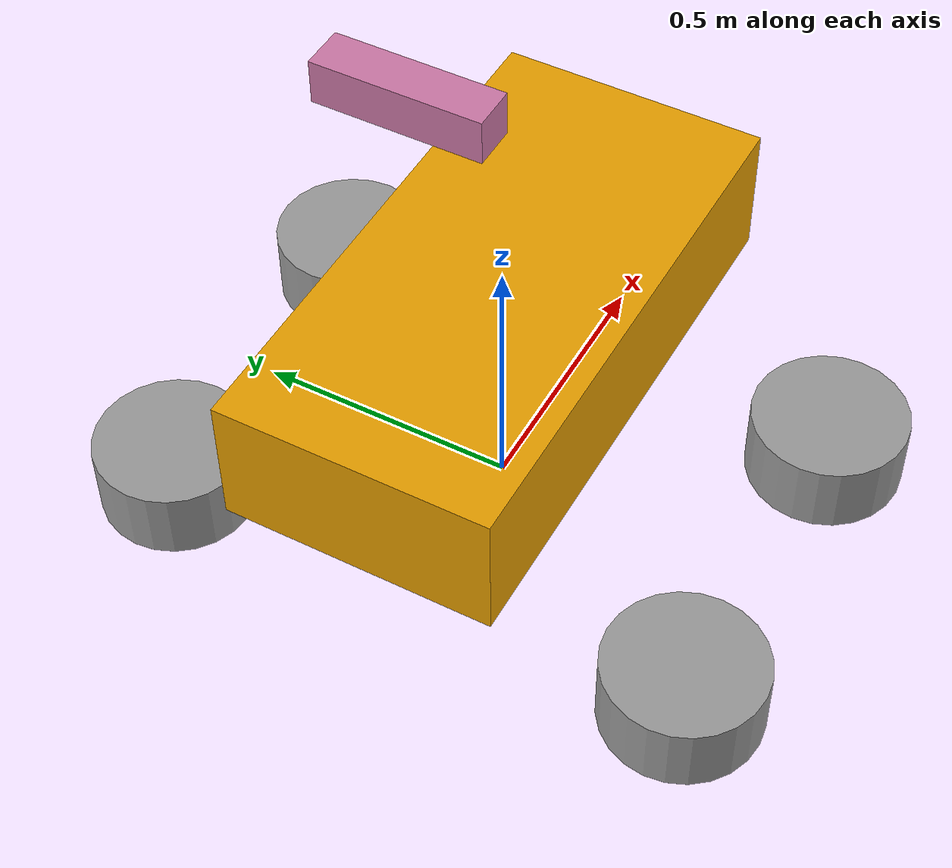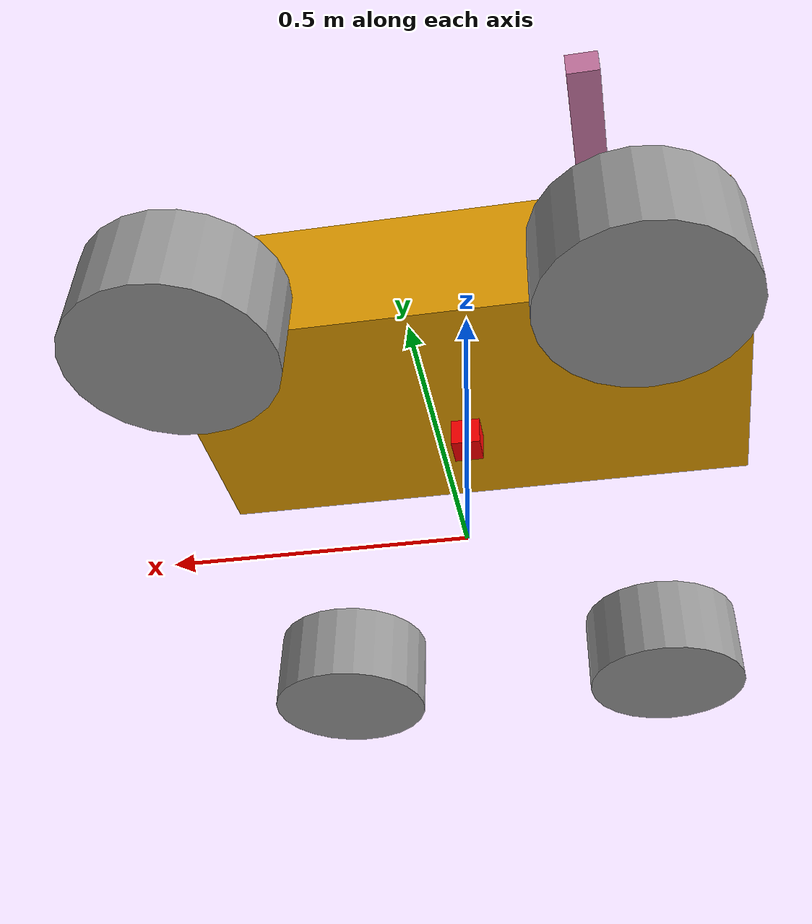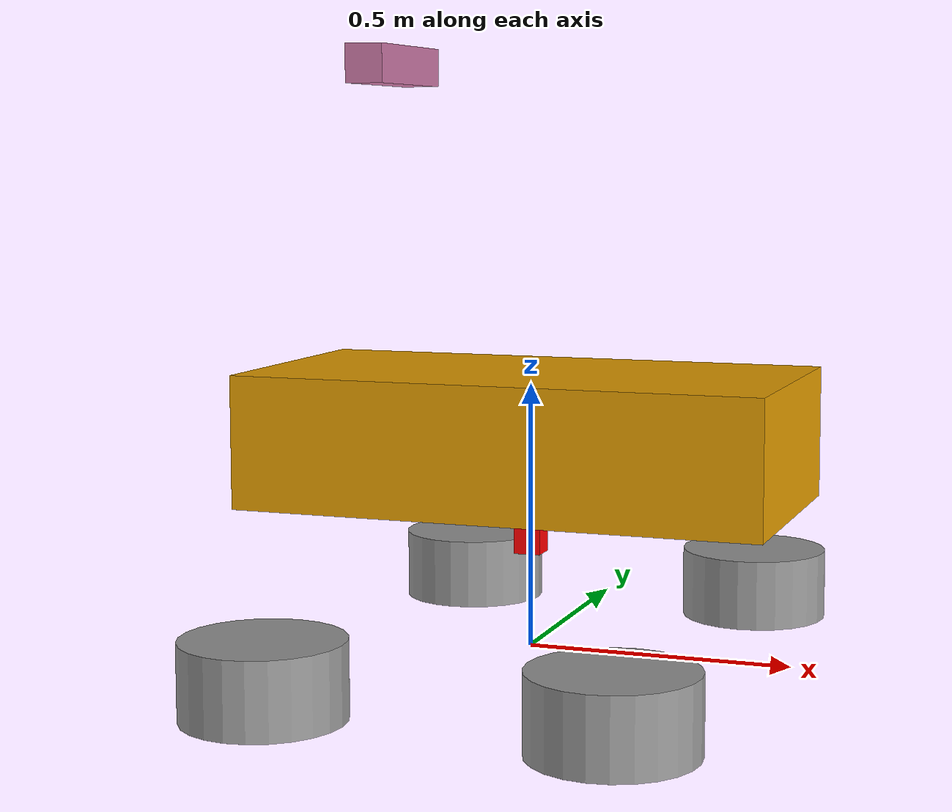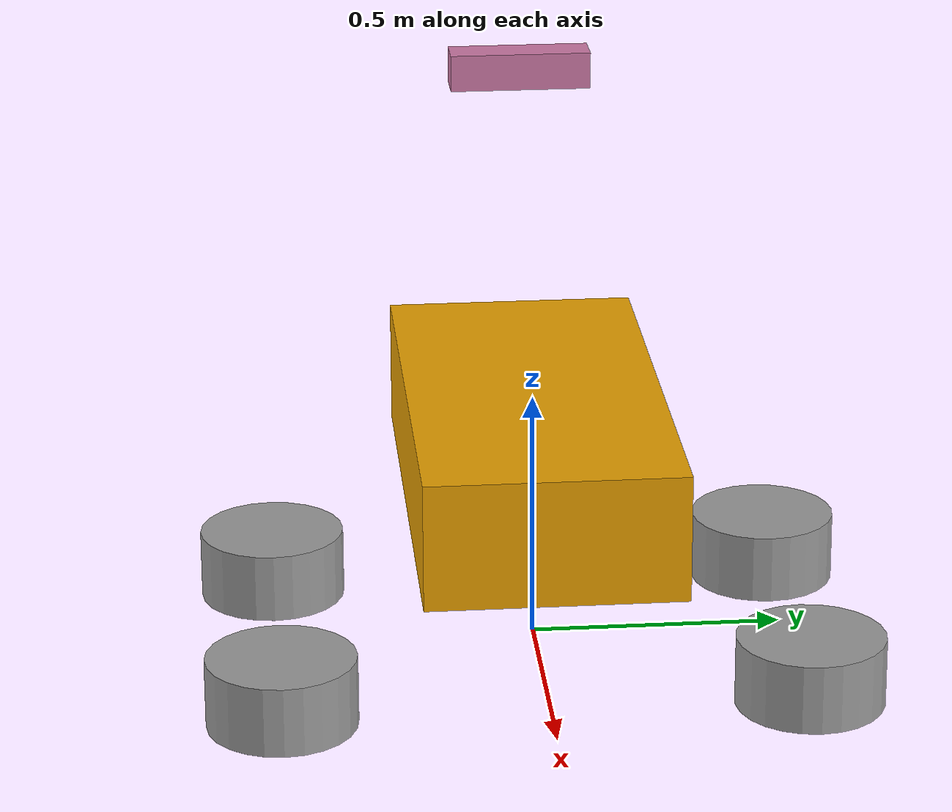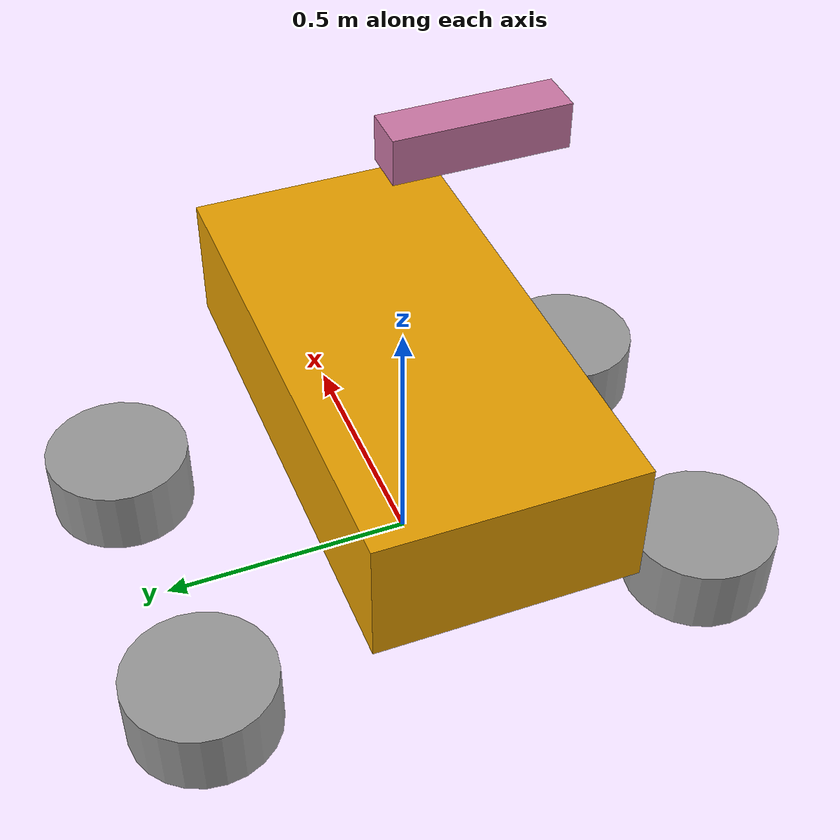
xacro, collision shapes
<?xml version="1.0"?>
<robot name="myfirst" xmlns:xacro="http://ros.org/wiki/xacro">
    <!-- Include other URDF files -->
    <xacro:include filename="$(find rover_gazebo)/urdf/wheel.urdf.xacro" />
    <xacro:include filename="$(find rover_gazebo)/urdf/depth_camera.urdf.xacro" />

    <link name="base_link">
        <inertial>
            <origin xyz="0 0 0" rpy="0 0 0" />
            <mass value="45.2" />
            <inertia ixx="1.7724" ixy="0.0" ixz="0.0" iyy="0.141558" iyz="-0.0" izz="0.179826" />
        </inertial>
        <visual>
            <origin xyz="0 0 0.1" rpy="0 0 0" />
            <geometry>
                <mesh filename="package://rover_gazebo/meshes/rover_body_with_arm.dae" />
            </geometry>
        </visual>
        <collision>
            <origin xyz="0 0 0.4" rpy="0 0 0" />
            <geometry>
                <box size="1 .5 .25" />
            </geometry>
        </collision>
    </link>

    <link name="base_footprint" />

    <joint name="base_joint" type="fixed">
        <parent link="base_footprint" />
        <child link="base_link" />
        <origin xyz="0.0 0.0 0.0" rpy="0 0 0" />
    </joint>

    <!-- Wheels -->
    <xacro:wheel wheel_prefix="left" parent_link="base_link">
        <origin xyz="0.316275 0.5125 ${-0.060752 + .1}" rpy="0 3.141592 ${3.141592/2}" />
    </xacro:wheel>

    <xacro:wheel wheel_prefix="right" parent_link="base_link">
        <origin xyz="0.316275 -0.5125 ${-0.060752 + .1}" rpy="0 0 ${3.141592/2}" />
    </xacro:wheel>

    <xacro:wheel wheel_prefix="rear_left" parent_link="base_link">
        <origin xyz="-0.306875 0.5125 ${-0.060752 + .1}" rpy="0 3.141592 ${3.141592/2}" />
    </xacro:wheel>

    <xacro:wheel wheel_prefix="rear_right" parent_link="base_link">
        <origin xyz="-0.306875 -0.5125 ${-0.060752 + .1}" rpy="0 0 ${3.141592/2}" />
    </xacro:wheel>

    <!-- Depth Camera -->
    <xacro:depth_camera parent_link="base_link">
        <origin xyz="-0.2754 0 ${0.9943 + .1}" rpy="0 0 0" />
    </xacro:depth_camera>

    <!-- IMU sensor -->
    <joint name="imu_joint" type="fixed">
        <axis xyz="1 0 0"/>
        <origin xyz="0 0 0.205"/>  <!-- Raised 10 cm higher -->
        <parent link="base_link"/>
        <child link="imu_link"/>
    </joint>

    <link name="imu_link">
        <inertial>
            <mass value="0.001"/>
            <origin rpy="0 0 0" xyz="0 0 0"/>
            <inertia ixx="0.0001" ixy="0" ixz="0" iyy="0.000001" iyz="0" izz="0.0001"/>
        </inertial>
        <visual>
            <origin rpy="0 0 0" xyz="0 0 0"/>
            <geometry>
                <box size="0.05 0.05 0.05"/>  <!-- Smaller size -->
            </geometry>
            <!-- Red material definition -->
            <material name="red">
                <color rgba="1.0 0.0 0.0 1.0"/>
            </material>
        </visual>
        <collision>
            <origin rpy="0 0 0" xyz="0 0 0"/>
            <geometry>
                <box size="0.05 0.05 0.05"/>  <!-- Smaller size -->
            </geometry>
        </collision>
    </link>

    <gazebo>
        <plugin name="gazebo_ros_control" filename="libgazebo_ros_control.so">
            <robotNamespace>/</robotNamespace>
        </plugin>

        <!-- IMU Sensor Plugin for Gazebo -->
        <plugin name="imu_sensor_plugin" filename="libgazebo_ros_imu.so">
            <alwaysOn>true</alwaysOn>
            <updateRate>50.0</updateRate>
            <bodyName>imu_link</bodyName>
            <topicName>/imu/data</topicName>
            <gaussianNoise>2.89e-08</gaussianNoise>
            <xyzOffsets>0 0 0</xyzOffsets>
            <rpyOffsets>0 0 0</rpyOffsets>
        </plugin>
    </gazebo>
</robot>

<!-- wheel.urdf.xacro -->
<robot name="wheel" xmlns:xacro="http://ros.org/wiki/xacro">
	<xacro:property name="wheel_kp" value="10000000.0" />
	<xacro:property name="wheel_kd" value="1.0" />
	<xacro:property name="wheel_mu1" value="5" />
	<xacro:property name="wheel_mu2" value="5" />
	<xacro:property name="M_PI" value="3.14159265" />

	<xacro:macro name="wheel" params="wheel_prefix parent_link *joint_pose">
		<!-- Wheel Link -->
		<link name="${wheel_prefix}_wheel_link">
			<inertial>
				<mass value="1.2" />
				<origin xyz="0 0 0" />
				<inertia ixx="0.142" ixy="0.0003118" ixz="0.0000392177" iyy="0.14155823"
					iyz="-0.000062645" izz="1.3729" />
			</inertial>
			<visual>
				<origin xyz="0 0 0" rpy="${M_PI/2} 0 0" />
				<geometry>
					<mesh filename="package://rover_gazebo/meshes/WHEEL.dae" />
				</geometry>
			</visual>
			<collision>
				<origin xyz="0 0 0" rpy="0 0 ${M_PI/2}" />
				<geometry>
					<cylinder length="0.14" radius="0.147" />
				</geometry>
			</collision>
		</link>

		<!-- Wheel Joint -->
		<joint name="${wheel_prefix}_wheel" type="continuous">
			<parent link="${parent_link}" />
			<child link="${wheel_prefix}_wheel_link" />
			<xacro:insert_block name="joint_pose" />
			<xacro:if value="${wheel_prefix == 'left'}">
				<axis xyz="0 0 1" rpy="0 0 0" />
			</xacro:if>
			<xacro:if value="${wheel_prefix == 'right'}">
				<axis xyz="0 0 1" rpy="0 0 0" />
			</xacro:if>
			<xacro:if value="${wheel_prefix == 'rear_left'}">
				<axis xyz="0 0 1" rpy="0 0 0" />
			</xacro:if>
			<xacro:if value="${wheel_prefix == 'rear_right'}">
				<axis xyz="0 0 1" rpy="0 0 0" />
			</xacro:if>
			<limit effort="300" velocity="50.0" />
		</joint>

		<gazebo reference="${wheel_prefix}_wheel_link">
			<mu1 value="${wheel_mu1}" />
			<mu2 value="${wheel_mu2}" />
			<kp value="${wheel_kp}" />
			<kd value="${wheel_kd}" />
			<material>Gazebo/Grey</material>
		</gazebo>

		<transmission name="${wheel_prefix}_wheel_trans">
			<type>transmission_interface/SimpleTransmission</type>
			<actuator name="${wheel_prefix}_wheel_motor">
				<mechanicalReduction>1</mechanicalReduction>
			</actuator>
			<joint name="${wheel_prefix}_wheel">
				<hardwareInterface>hardware_interface/VelocityJointInterface</hardwareInterface>
			</joint>
		</transmission>

	</xacro:macro>

</robot>

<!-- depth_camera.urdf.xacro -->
<robot name="kinect" xmlns:xacro="http://ros.org/wiki/xacro">
    <xacro:macro name="depth_camera" params="parent_link *joint_pose">
        <link name="kinect_link">
            <inertial>
                <mass value="0.1" />
                <origin xyz="0 0 0" rpy="0 0 0" />
                <inertia ixx="0" ixy="0" ixz="0" iyy="0" iyz="0" izz="0" />
            </inertial>
            <collision name="kinect_collision">
                <origin xyz="0 0 0" rpy="0 0 0" />
                <geometry>
                    <box size="0.073000 0.276000 0.072000" />
                </geometry>
            </collision>
            <visual name="kinect_visual">
                <origin xyz="0 0 0" rpy="0 0 0" />
                <geometry>
                    <mesh filename="package://rover_gazebo/meshes/depth_camera.dae"
                        scale="1.0 1.0 1.0" />
                </geometry>
            </visual>
        </link>

        <joint name="depth_camera_joint" type="fixed">
			<parent link="${parent_link}" />
			<child link="kinect_link" />
			<xacro:insert_block name="joint_pose" />
		</joint>

        <gazebo reference="kinect_link">
            <sensor name="camera" type="depth">
                <update_rate>1</update_rate>
                <camera>
                    <horizontal_fov>1.047198</horizontal_fov>
                    <image>
                        <width>80</width>
                        <height>120</height>
                        <format>R8G8B8</format>
                    </image>
                    <clip>
                        <near>1.05</near>
                        <far>10</far>
                    </clip>
                </camera>
                <plugin name="camera_plugin" filename="libgazebo_ros_openni_kinect.so">
                    <baseline>0.2</baseline>
                    <alwaysOn>true</alwaysOn>
                    <updateRate>0.0</updateRate>
                    <cameraName>camera_ir</cameraName>
                    <imageTopicName>/camera/color/image_raw</imageTopicName>
                    <cameraInfoTopicName>/camera/color/camera_info</cameraInfoTopicName>
                    <depthImageTopicName>/camera/depth/image_raw</depthImageTopicName>
                    <depthImageCameraInfoTopicName>/camera/depth/camera_info</depthImageCameraInfoTopicName>
                    <pointCloudTopicName>/camera/depth/points</pointCloudTopicName>
                    <frameName>camera_link</frameName>
                    <pointCloudCutoff>1.05</pointCloudCutoff>
                    <pointCloudCutoffMax>10</pointCloudCutoffMax>
                    <distortionK1>0</distortionK1>
                    <distortionK2>0</distortionK2>
                    <distortionK3>0</distortionK3>
                    <distortionT1>0</distortionT1>
                    <distortionT2>0</distortionT2>
                    <CxPrime>0</CxPrime>
                    <Cx>0</Cx>
                    <Cy>0</Cy>
                    <focalLength>0</focalLength>
                    <hackBaseline>0</hackBaseline>
                </plugin>
            </sensor>
        </gazebo>
    </xacro:macro>
</robot>
